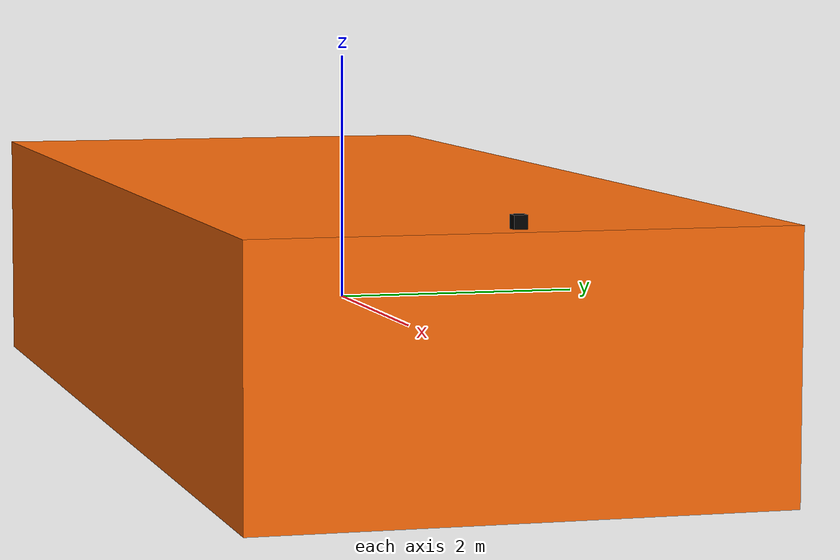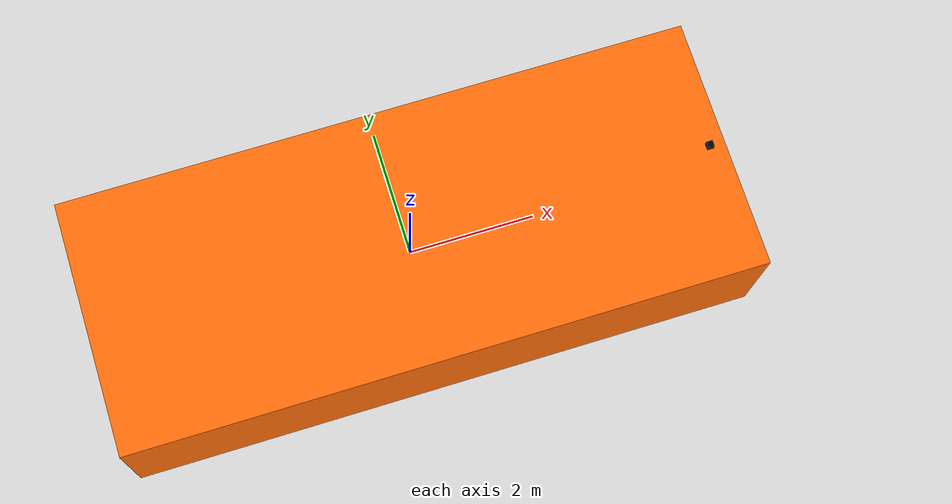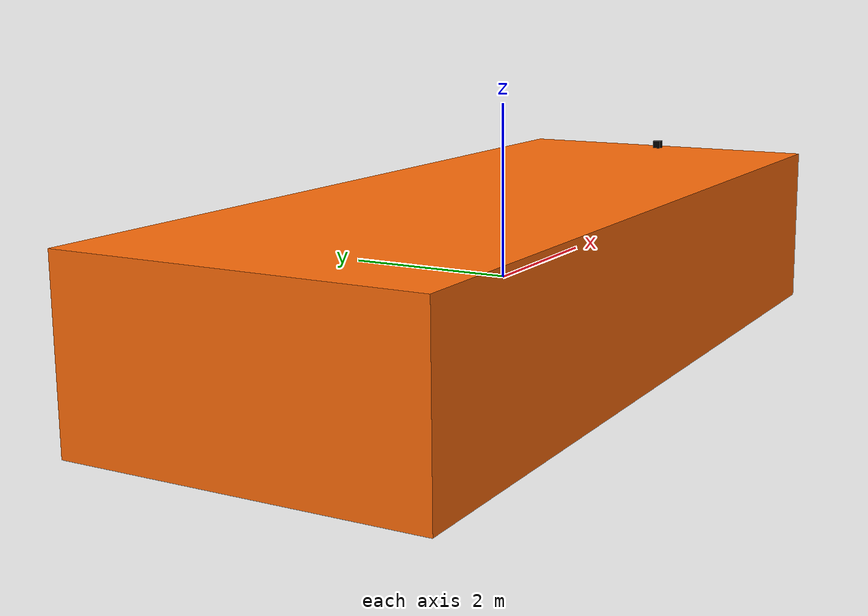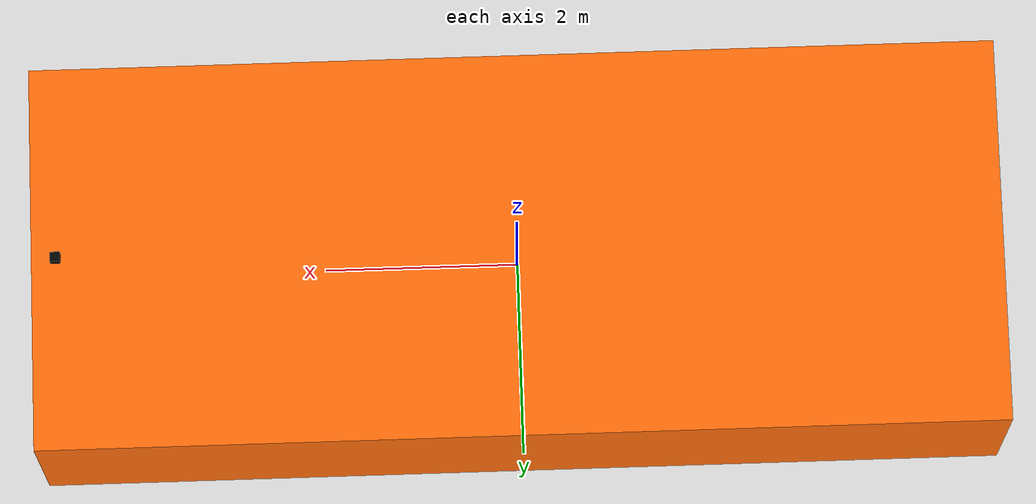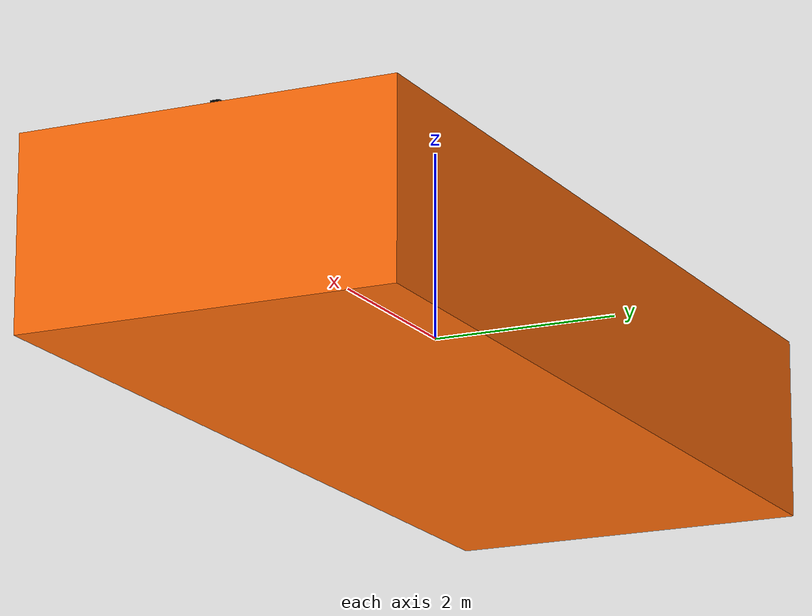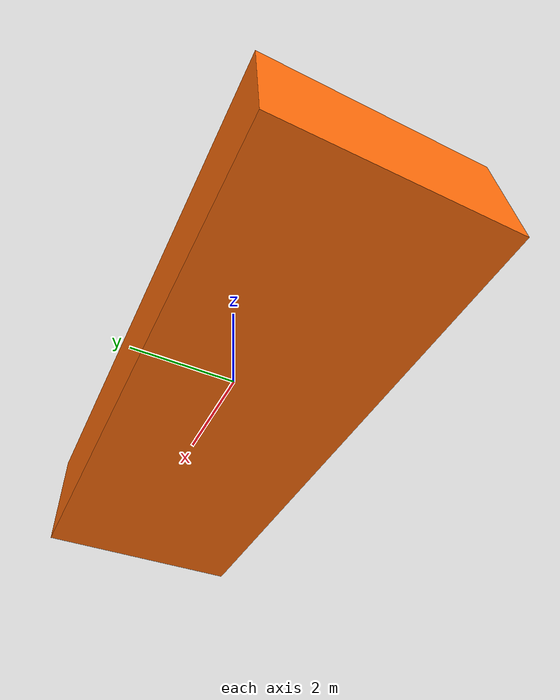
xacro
<?xml version="1.0" ?>
<robot name="bbot" xmlns:xacro="http://www.ros.org/wiki/xacro">

  <!-- Math constants -->
  <xacro:property name="math_pi" value="3.141592653589793" />

  <!-- Math macros -->
  <xacro:macro name="box_inertial" params="mass x y z">
    <inertial>
      <mass value="${mass}" />
      <inertia
        ixx="${mass * (y * y + z * z) / 12.0}" ixy="0.0" ixz="0.0"
        iyy="${mass * (z * z + x * x) / 12.0}" iyz="0.0"
        izz="${mass * (x * x + y * y) / 12.0}" />
    </inertial>
  </xacro:macro>

  <!-- Constants for robot dimensions -->
  <xacro:property name="hull_mass" value="20000.0" />
  <xacro:property name="hull_loa" value="10.0" />
  <xacro:property name="hull_woa" value="4.0" />
  <xacro:property name="hull_doa" value="2.0" />
  <xacro:property name="camera_mass" value="0.1" />
  <xacro:property name="camera_size" value="0.1" />

  <!-- Import Gazebo elements -->
  <xacro:include filename="$(find bbot_description)/urdf/bbot.gazebo" />

  <!-- Import materials -->
  <xacro:include filename="$(find bbot_description)/urdf/materials.xacro" />

  <!-- Base link (main hull) -->
  <link name="base_link">
    <visual>
      <geometry>
        <box size="${hull_loa} ${hull_woa} ${hull_doa}"/>
      </geometry>
      <material name="orange" />
    </visual>

    <collision>
      <geometry>
        <box size="${hull_loa} ${hull_woa} ${hull_doa}"/>
      </geometry>
    </collision>

    <xacro:box_inertial mass="${hull_mass}" x="${hull_loa}" y="${hull_loa}" z="${hull_doa}" />
  </link>

  <!-- Camera -->
  <link name="camera_link">
    <visual>
      <geometry>
        <box size="${camera_size} ${camera_size} ${camera_size}"/>
      </geometry>
      <material name="black" />
    </visual>

    <collision>
      <geometry>
        <box size="${camera_size} ${camera_size} ${camera_size}"/>
      </geometry>
    </collision>

    <xacro:box_inertial mass="${camera_mass}" x="${camera_size}" y="${camera_size}" z="${camera_size}" />
  </link>

  <joint name="camera_joint" type="fixed">
    <axis xyz="0 1 0" />
    <origin xyz="${hull_loa/2 - 0.25} 0 ${hull_doa/2 + camera_size/2}" rpy="0 0 0"/>
    <parent link="base_link"/>
    <child link="camera_link"/>
  </joint>

</robot>

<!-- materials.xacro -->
<robot>

  <material name="black">
    <color rgba="0.0 0.0 0.0 1.0"/>
  </material>

  <material name="blue">
    <color rgba="0.0 0.0 0.8 1.0"/>
  </material>

  <material name="orange">
    <color rgba="${255/255} ${108/255} ${10/255} 1.0"/>
  </material>

</robot>
